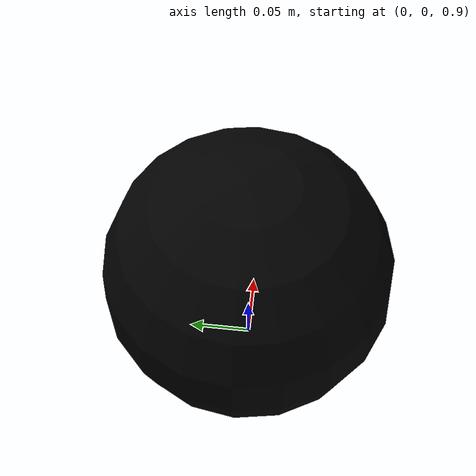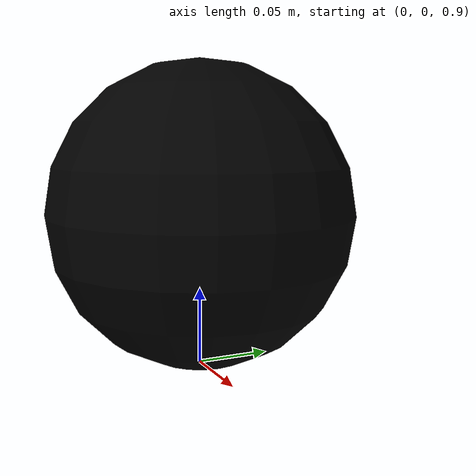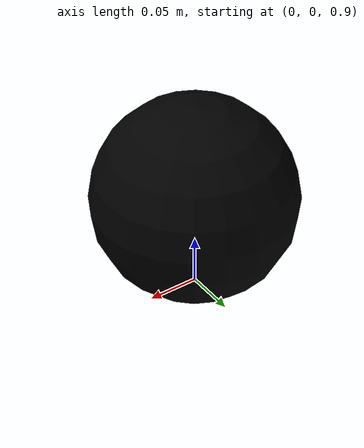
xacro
<?xml version="1.0"?>
<robot name="rbo" xmlns:xacro="http://www.ros.org/wiki/xacro">

    <xacro:property name="rad" value="0.1"/>

    <xacro:macro name="default_inertial" params="mass">
        <inertial>
            <mass value="${mass}" />
            <inertia ixx="1.0" ixy="1.0" ixz="1.0" iyy="1.0" iyz="1.0" 			izz="1.0" />
        </inertial>
    </xacro:macro>

    <xacro:macro name="ball_geometry" params="radius">
        <geometry>
            <sphere radius="${radius}"/>
        </geometry>
    </xacro:macro>

    <link name="ball">

        <visual>
            <xacro:ball_geometry radius="${rad}" />
			<origin rpy="0 0 0" xyz="0 0 1" />
			<material name="black">
				<color rgba="0 0 0 1"/>
			</material>
        </visual>

        <collision>
            <xacro:ball_geometry radius="${rad}" />
        </collision>
	<xacro:default_inertial mass="1.0"/>
    </link>

	<!-- position controller -->
	<gazebo>
	  <plugin name="base_controller" filename="libgazebo_ros_planar_move.so">
		<commandTopic>cmd_vel</commandTopic>
		<odometryTopic>odom</odometryTopic>
		<odometryFrame>/odom</odometryFrame>
		<odometryRate>100.0</odometryRate>
		<robotBaseFrame>base_footprint</robotBaseFrame>
		<broadcastTF>true</broadcastTF>
	  </plugin>
	</gazebo>

    <!-- ros_control plugin -->
    <gazebo>
    <plugin name="gazebo_ros_control" filename="libgazebo_ros_control.so">
      	<robotNamespace>/robot</robotNamespace>
    </plugin>
  </gazebo>
</robot>
